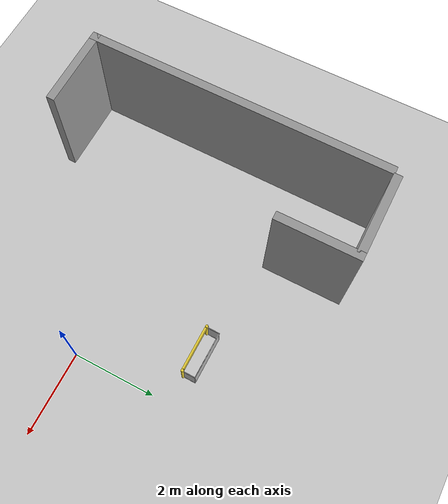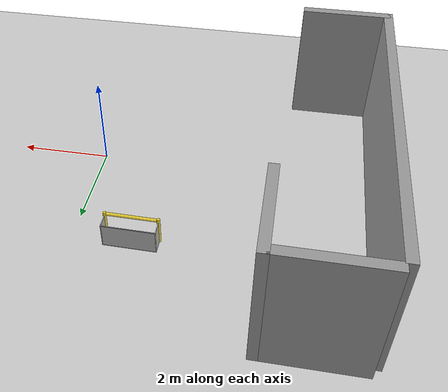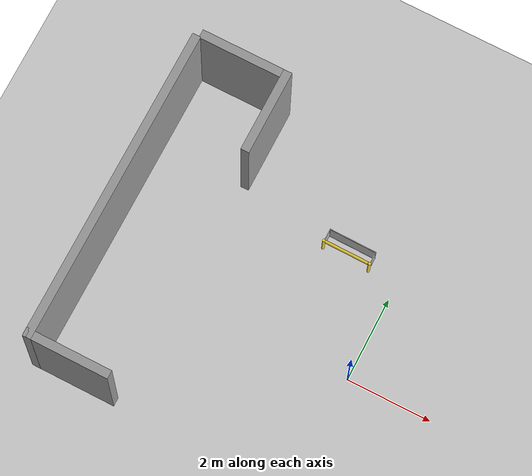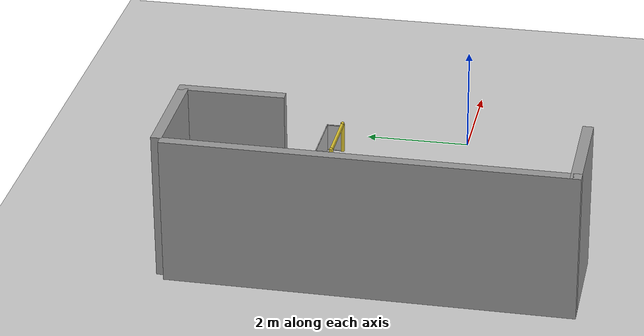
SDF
<sdf version="1.7">
 <world name="world">
  <model name="ground_plane">
   <static>1</static>
   <link name="link">
    <collision name="collision">
     <geometry><plane><normal>0 0 1</normal><size>100 100</size></plane></geometry>
     <surface><friction><ode><mu>100</mu><mu2>50</mu2></ode></friction></surface>
    </collision>
    <visual name="visual">
     <cast_shadows>0</cast_shadows>
     <geometry><plane><normal>0 0 1</normal><size>100 100</size></plane></geometry>
     <material>
      <script><uri>file://media/materials/scripts/gazebo.material</uri><name>Gazebo/Grey</name></script>
     </material>
    </visual>
   </link>
  </model>
  <light name="sun" type="directional">
   <pose>0 0 10 0 -0 0</pose>
   <diffuse>0.8 0.8 0.8 1</diffuse>
   <specular>0.2 0.2 0.2 1</specular>
   <attenuation>
    <range>1000</range>
    <constant>0.9</constant>
    <linear>0.01</linear>
    <quadratic>0.001</quadratic>
   </attenuation>
   <direction>-0.5 0.1 -0.9</direction>
   <spot><inner_angle>0</inner_angle><outer_angle>0</outer_angle><falloff>0</falloff></spot>
  </light>
  <gravity>0 0 -9.8</gravity>
  <magnetic_field>6e-06 2.3e-05 -4.2e-05</magnetic_field>
  <atmosphere type="adiabatic"/>
  <physics type="ode">
   <max_step_size>0.001</max_step_size>
   <real_time_factor>1</real_time_factor>
   <real_time_update_rate>1000</real_time_update_rate>
  </physics>
  <scene><ambient>0.4 0.4 0.4 1</ambient><background>0.7 0.7 0.7 1</background><shadows>1</shadows></scene>
  <spherical_coordinates>
   <surface_model>EARTH_WGS84</surface_model>
   <latitude_deg>0</latitude_deg>
   <longitude_deg>0</longitude_deg>
   <elevation>0</elevation>
   <heading_deg>0</heading_deg>
  </spherical_coordinates>
  <model name="RoboCup 2014 SPL Goal_1">
   <static>1</static>
   <link name="left_post">
    <pose>0 0.56 0.315 0 -0 0</pose>
    <collision name="collision">
     <geometry><cylinder><radius>0.035</radius><length>0.63</length></cylinder></geometry>
    </collision>
    <visual name="visual">
     <geometry><cylinder><radius>0.035</radius><length>0.63</length></cylinder></geometry>
     <material>
      <script><uri>file://media/materials/scripts/gazebo.material</uri><name>Gazebo/ZincYellow</name></script>
     </material>
    </visual>
   </link>
   <link name="left_support_horiz_lower">
    <pose>0.168 0.56 0.007 0 -0 0</pose>
    <collision name="collision"><geometry><box><size>0.266 0.014 0.014</size></box></geometry></collision>
    <visual name="visual">
     <geometry><box><size>0.266 0.014 0.014</size></box></geometry>
     <material>
      <script><uri>file://media/materials/scripts/gazebo.material</uri><name>Gazebo/White</name></script>
     </material>
    </visual>
   </link>
   <link name="left_support_horiz_upper">
    <pose>0.168 0.56 0.553 0 -0 0</pose>
    <collision name="collision"><geometry><box><size>0.266 0.014 0.014</size></box></geometry></collision>
    <visual name="visual">
     <geometry><box><size>0.266 0.014 0.014</size></box></geometry>
     <material>
      <script><uri>file://media/materials/scripts/gazebo.material</uri><name>Gazebo/White</name></script>
     </material>
    </visual>
   </link>
   <link name="left_support_vertical">
    <pose>0.308 0.56 0.28 3.14159 1.57079 3.14159</pose>
    <collision name="collision"><geometry><box><size>0.56 0.014 0.014</size></box></geometry></collision>
    <visual name="visual">
     <geometry><box><size>0.56 0.014 0.014</size></box></geometry>
     <material>
      <script><uri>file://media/materials/scripts/gazebo.material</uri><name>Gazebo/White</name></script>
     </material>
    </visual>
   </link>
   <link name="right_support_horiz_lower">
    <pose>0.168 -0.56 0.007 0 -0 0</pose>
    <collision name="collision"><geometry><box><size>0.266 0.014 0.014</size></box></geometry></collision>
    <visual name="visual">
     <geometry><box><size>0.266 0.014 0.014</size></box></geometry>
     <material>
      <script><uri>file://media/materials/scripts/gazebo.material</uri><name>Gazebo/White</name></script>
     </material>
    </visual>
   </link>
   <link name="right_support_horiz_upper">
    <pose>0.168 -0.56 0.553 0 -0 0</pose>
    <collision name="collision"><geometry><box><size>0.266 0.014 0.014</size></box></geometry></collision>
    <visual name="visual">
     <geometry><box><size>0.266 0.014 0.014</size></box></geometry>
     <material>
      <script><uri>file://media/materials/scripts/gazebo.material</uri><name>Gazebo/White</name></script>
     </material>
    </visual>
   </link>
   <link name="right_support_vertical">
    <pose>0.308 -0.56 0.28 3.14159 1.57079 3.14159</pose>
    <collision name="collision"><geometry><box><size>0.56 0.014 0.014</size></box></geometry></collision>
    <visual name="visual">
     <geometry><box><size>0.56 0.014 0.014</size></box></geometry>
     <material>
      <script><uri>file://media/materials/scripts/gazebo.material</uri><name>Gazebo/White</name></script>
     </material>
    </visual>
   </link>
   <link name="center_support_horiz_lower">
    <pose>0.308 0 0.007 3.14159 1.57079 3.14159</pose>
    <collision name="collision"><geometry><box><size>0.014 1.106 0.014</size></box></geometry></collision>
    <visual name="visual">
     <geometry><box><size>0.014 1.106 0.014</size></box></geometry>
     <material>
      <script><uri>file://media/materials/scripts/gazebo.material</uri><name>Gazebo/White</name></script>
     </material>
    </visual>
   </link>
   <link name="center_support_horiz_upper">
    <pose>0.308 0 0.553 3.14159 1.57079 3.14159</pose>
    <collision name="collision"><geometry><box><size>0.014 1.106 0.014</size></box></geometry></collision>
    <visual name="visual">
     <geometry><box><size>0.014 1.106 0.014</size></box></geometry>
     <material>
      <script><uri>file://media/materials/scripts/gazebo.material</uri><name>Gazebo/White</name></script>
     </material>
    </visual>
   </link>
   <link name="right_post">
    <pose>0 -0.56 0.315 0 -0 0</pose>
    <collision name="collision">
     <geometry><cylinder><radius>0.035</radius><length>0.63</length></cylinder></geometry>
    </collision>
    <visual name="visual">
     <geometry><cylinder><radius>0.035</radius><length>0.63</length></cylinder></geometry>
     <material>
      <script><uri>file://media/materials/scripts/gazebo.material</uri><name>Gazebo/ZincYellow</name></script>
     </material>
    </visual>
   </link>
   <link name="crossbar">
    <pose>0 0 0.595 1.57 1.57 0</pose>
    <collision name="collision">
     <geometry><cylinder><radius>0.035</radius><length>1.05</length></cylinder></geometry>
    </collision>
    <visual name="visual">
     <geometry><cylinder><radius>0.035</radius><length>1.05</length></cylinder></geometry>
     <material>
      <script><uri>file://media/materials/scripts/gazebo.material</uri><name>Gazebo/ZincYellow</name></script>
     </material>
    </visual>
   </link>
   <link name="center_net">
    <pose>0.308 0 0.28 0 -0 0</pose>
    <collision name="collision"><geometry><box><size>0.007 1.12 0.56</size></box></geometry></collision>
    <visual name="visual">
     <geometry><box><size>0.007 1.12 0.56</size></box></geometry>
     <material>
      <script>
       <uri>model://robocup09_spl_field/materials/scripts/</uri>
       <uri>model://robocup09_spl_field/materials/textures/</uri>
       <name>RoboCup/Net</name>
      </script>
     </material>
    </visual>
   </link>
   <link name="left_net">
    <pose>0.168 0.56 0.28 0 -0 0</pose>
    <collision name="collision"><geometry><box><size>0.266 0.007 0.532</size></box></geometry></collision>
    <visual name="visual">
     <geometry><box><size>0.266 0.007 0.532</size></box></geometry>
     <material>
      <script>
       <uri>model://robocup09_spl_field/materials/scripts/</uri>
       <uri>model://robocup09_spl_field/materials/textures/</uri>
       <name>RoboCup/Net</name>
      </script>
     </material>
    </visual>
   </link>
   <link name="right_net">
    <pose>0.168 -0.56 0.28 0 -0 0</pose>
    <collision name="collision"><geometry><box><size>0.266 0.007 0.532</size></box></geometry></collision>
    <visual name="visual">
     <geometry><box><size>0.266 0.007 0.532</size></box></geometry>
     <material>
      <script>
       <uri>model://robocup09_spl_field/materials/scripts/</uri>
       <uri>model://robocup09_spl_field/materials/textures/</uri>
       <name>RoboCup/Net</name>
      </script>
     </material>
    </visual>
   </link>
   <pose>-1.2578 2.39621 0 0 -0 1.56109</pose>
  </model>
  <model name="grey_wall">
   <static>1</static>
   <link name="link">
    <pose>0 0 1.4 0 -0 0</pose>
    <collision name="collision"><geometry><box><size>7.5 0.2 2.8</size></box></geometry></collision>
    <visual name="visual">
     <cast_shadows>0</cast_shadows>
     <geometry><box><size>7.5 0.2 2.8</size></box></geometry>
     <material>
      <script>
       <uri>model://grey_wall/materials/scripts</uri>
       <uri>model://grey_wall/materials/textures</uri>
       <name>vrc/grey_wall</name>
      </script>
     </material>
    </visual>
   </link>
   <pose>-6.10701 0.893137 0 0 0 -1.57644</pose>
  </model>
  <model name="grey_wall_short">
   <link name="link">
    <pose>0 0 1.4 0 -0 0</pose>
    <inertial>
     <mass>1</mass>
     <inertia><ixx>1</ixx><ixy>0</ixy><ixz>0</ixz><iyy>1</iyy><iyz>0</iyz><izz>1</izz></inertia>
    </inertial>
    <visual name="visual">
     <cast_shadows>0</cast_shadows>
     <geometry><box><size>2 0.2 2.8</size></box></geometry>
     <material>
      <script>
       <uri>model://grey_wall/materials/scripts</uri>
       <uri>model://grey_wall/materials/textures</uri>
       <name>vrc/grey_wall</name>
      </script>
      <shader type="pixel"><normal_map>__default__</normal_map></shader>
      <ambient>1 1 1 1</ambient>
      <diffuse>1 1 1 1</diffuse>
      <specular>0 0 0 1</specular>
      <emissive>0 0 0 1</emissive>
     </material>
    </visual>
    <collision name="collision">
     <geometry><box><size>7.5 0.2 2.8</size></box></geometry>
     <surface>
      <friction>
       <ode><mu>1</mu><mu2>1</mu2><fdir1>0 0 0</fdir1><slip1>0</slip1><slip2>0</slip2></ode>
       <torsional>
        <coefficient>1</coefficient>
        <patch_radius>0</patch_radius>
        <surface_radius>0</surface_radius>
        <use_patch_radius>1</use_patch_radius>
        <ode><slip>0</slip></ode>
       </torsional>
      </friction>
      <bounce><restitution_coefficient>0</restitution_coefficient><threshold>1e+06</threshold></bounce>
      <contact>
       <collide_without_contact>0</collide_without_contact>
       <collide_without_contact_bitmask>1</collide_without_contact_bitmask>
       <collide_bitmask>1</collide_bitmask>
       <ode>
        <soft_cfm>0</soft_cfm>
        <soft_erp>0.2</soft_erp>
        <kp>1e+13</kp>
        <kd>1</kd>
        <max_vel>0.01</max_vel>
        <min_depth>0</min_depth>
       </ode>
       <bullet>
        <split_impulse>1</split_impulse>
        <split_impulse_penetration_threshold>-0.01</split_impulse_penetration_threshold>
        <soft_cfm>0</soft_cfm>
        <soft_erp>0.2</soft_erp>
        <kp>1e+13</kp>
        <kd>1</kd>
       </bullet>
      </contact>
     </surface>
    </collision>
   </link>
   <static>1</static>
   <pose>-5.22381 -2.75562 0 0 -0 0</pose>
  </model>
  <model name="grey_wall_short_clone">
   <link name="link">
    <pose>0 0 1.4 0 -0 0</pose>
    <inertial>
     <mass>1</mass>
     <inertia><ixx>1</ixx><ixy>0</ixy><ixz>0</ixz><iyy>1</iyy><iyz>0</iyz><izz>1</izz></inertia>
    </inertial>
    <visual name="visual">
     <cast_shadows>0</cast_shadows>
     <geometry><box><size>2 0.2 2.8</size></box></geometry>
     <material>
      <script>
       <uri>model://grey_wall/materials/scripts</uri>
       <uri>model://grey_wall/materials/textures</uri>
       <name>vrc/grey_wall</name>
      </script>
      <shader type="pixel"><normal_map>__default__</normal_map></shader>
      <ambient>1 1 1 1</ambient>
      <diffuse>1 1 1 1</diffuse>
      <specular>0 0 0 1</specular>
      <emissive>0 0 0 1</emissive>
     </material>
    </visual>
    <collision name="collision">
     <geometry><box><size>7.5 0.2 2.8</size></box></geometry>
     <surface>
      <friction>
       <ode><mu>1</mu><mu2>1</mu2><fdir1>0 0 0</fdir1><slip1>0</slip1><slip2>0</slip2></ode>
       <torsional>
        <coefficient>1</coefficient>
        <patch_radius>0</patch_radius>
        <surface_radius>0</surface_radius>
        <use_patch_radius>1</use_patch_radius>
        <ode><slip>0</slip></ode>
       </torsional>
      </friction>
      <bounce><restitution_coefficient>0</restitution_coefficient><threshold>1e+06</threshold></bounce>
      <contact>
       <collide_without_contact>0</collide_without_contact>
       <collide_without_contact_bitmask>1</collide_without_contact_bitmask>
       <collide_bitmask>1</collide_bitmask>
       <ode>
        <soft_cfm>0</soft_cfm>
        <soft_erp>0.2</soft_erp>
        <kp>1e+13</kp>
        <kd>1</kd>
        <max_vel>0.01</max_vel>
        <min_depth>0</min_depth>
       </ode>
       <bullet>
        <split_impulse>1</split_impulse>
        <split_impulse_penetration_threshold>-0.01</split_impulse_penetration_threshold>
        <soft_cfm>0</soft_cfm>
        <soft_erp>0.2</soft_erp>
        <kp>1e+13</kp>
        <kd>1</kd>
       </bullet>
      </contact>
     </surface>
    </collision>
   </link>
   <static>1</static>
   <pose>-3.98033 3.81549 0 0 -0 1.57</pose>
  </model>
  <model name="grey_wall_short_clone_0">
   <link name="link">
    <pose>0 0 1.4 0 -0 0</pose>
    <inertial>
     <mass>1</mass>
     <inertia><ixx>1</ixx><ixy>0</ixy><ixz>0</ixz><iyy>1</iyy><iyz>0</iyz><izz>1</izz></inertia>
    </inertial>
    <visual name="visual">
     <cast_shadows>0</cast_shadows>
     <geometry><box><size>2 0.2 2.8</size></box></geometry>
     <material>
      <script>
       <uri>model://grey_wall/materials/scripts</uri>
       <uri>model://grey_wall/materials/textures</uri>
       <name>vrc/grey_wall</name>
      </script>
      <shader type="pixel"><normal_map>__default__</normal_map></shader>
      <ambient>1 1 1 1</ambient>
      <diffuse>1 1 1 1</diffuse>
      <specular>0 0 0 1</specular>
      <emissive>0 0 0 1</emissive>
     </material>
    </visual>
    <collision name="collision">
     <geometry><box><size>7.5 0.2 2.8</size></box></geometry>
     <surface>
      <friction>
       <ode><mu>1</mu><mu2>1</mu2><fdir1>0 0 0</fdir1><slip1>0</slip1><slip2>0</slip2></ode>
       <torsional>
        <coefficient>1</coefficient>
        <patch_radius>0</patch_radius>
        <surface_radius>0</surface_radius>
        <use_patch_radius>1</use_patch_radius>
        <ode><slip>0</slip></ode>
       </torsional>
      </friction>
      <bounce><restitution_coefficient>0</restitution_coefficient><threshold>1e+06</threshold></bounce>
      <contact>
       <collide_without_contact>0</collide_without_contact>
       <collide_without_contact_bitmask>1</collide_without_contact_bitmask>
       <collide_bitmask>1</collide_bitmask>
       <ode>
        <soft_cfm>0</soft_cfm>
        <soft_erp>0.2</soft_erp>
        <kp>1e+13</kp>
        <kd>1</kd>
        <max_vel>0.01</max_vel>
        <min_depth>0</min_depth>
       </ode>
       <bullet>
        <split_impulse>1</split_impulse>
        <split_impulse_penetration_threshold>-0.01</split_impulse_penetration_threshold>
        <soft_cfm>0</soft_cfm>
        <soft_erp>0.2</soft_erp>
        <kp>1e+13</kp>
        <kd>1</kd>
       </bullet>
      </contact>
     </surface>
    </collision>
   </link>
   <static>1</static>
   <pose>-5.02483 4.71516 0 0 -0 0</pose>
  </model>
 </world>
</sdf>
